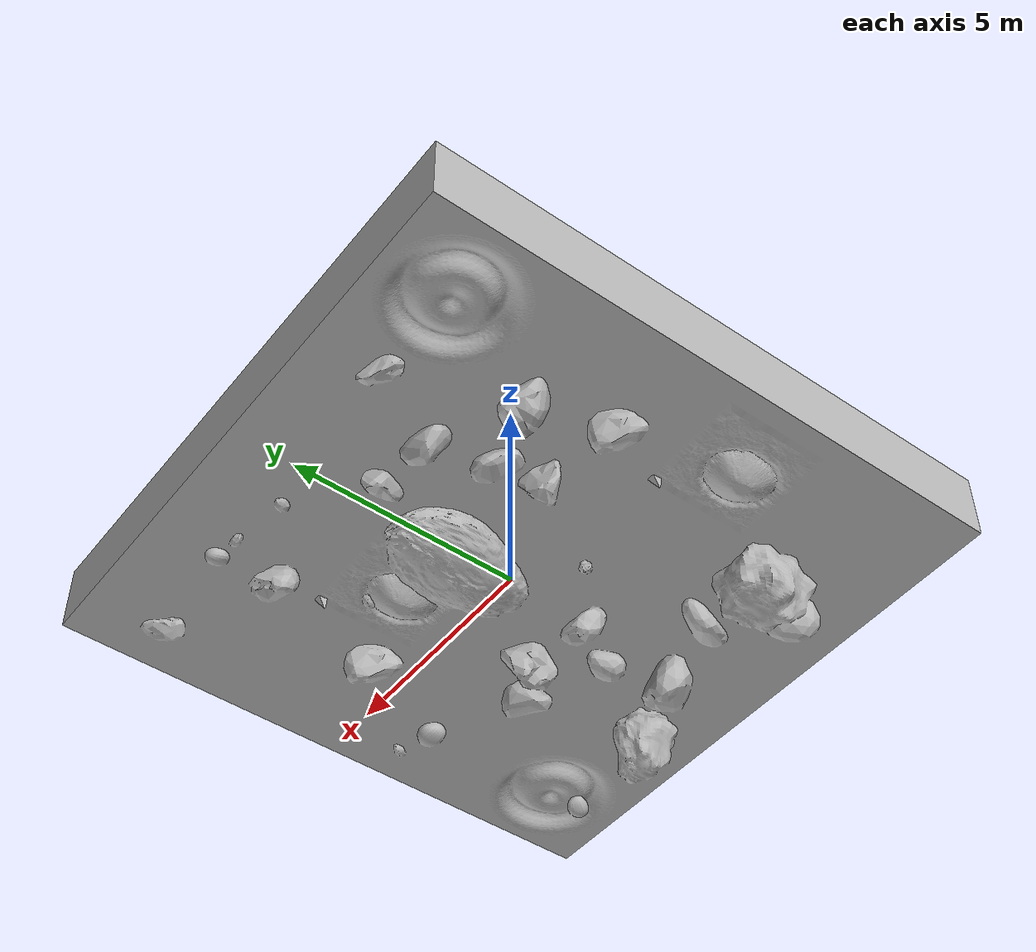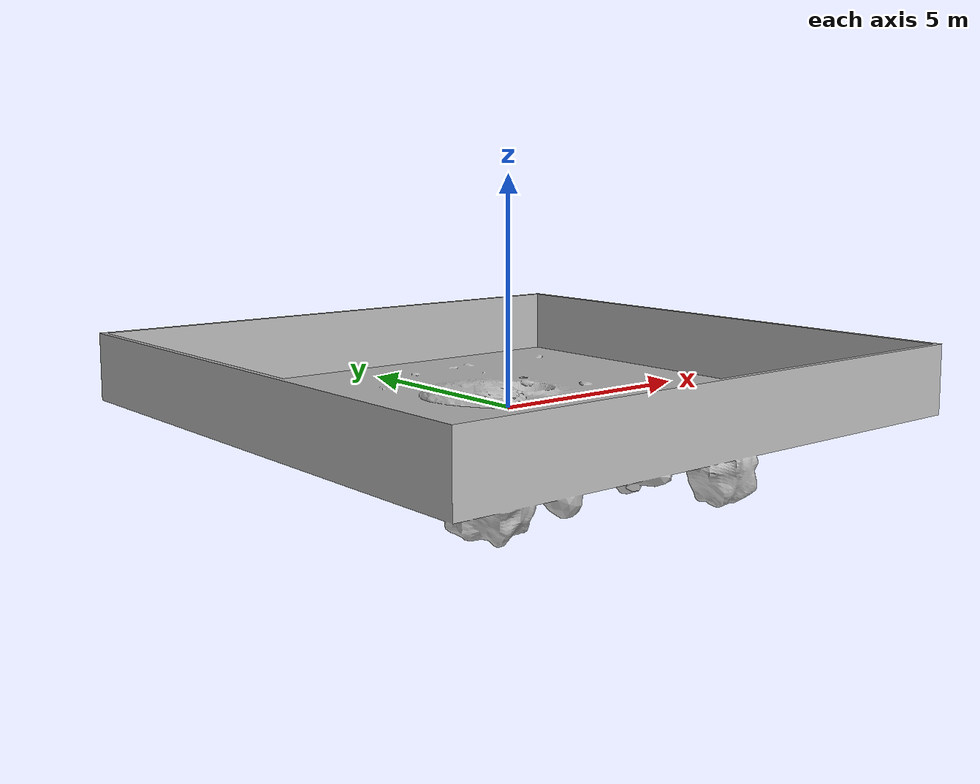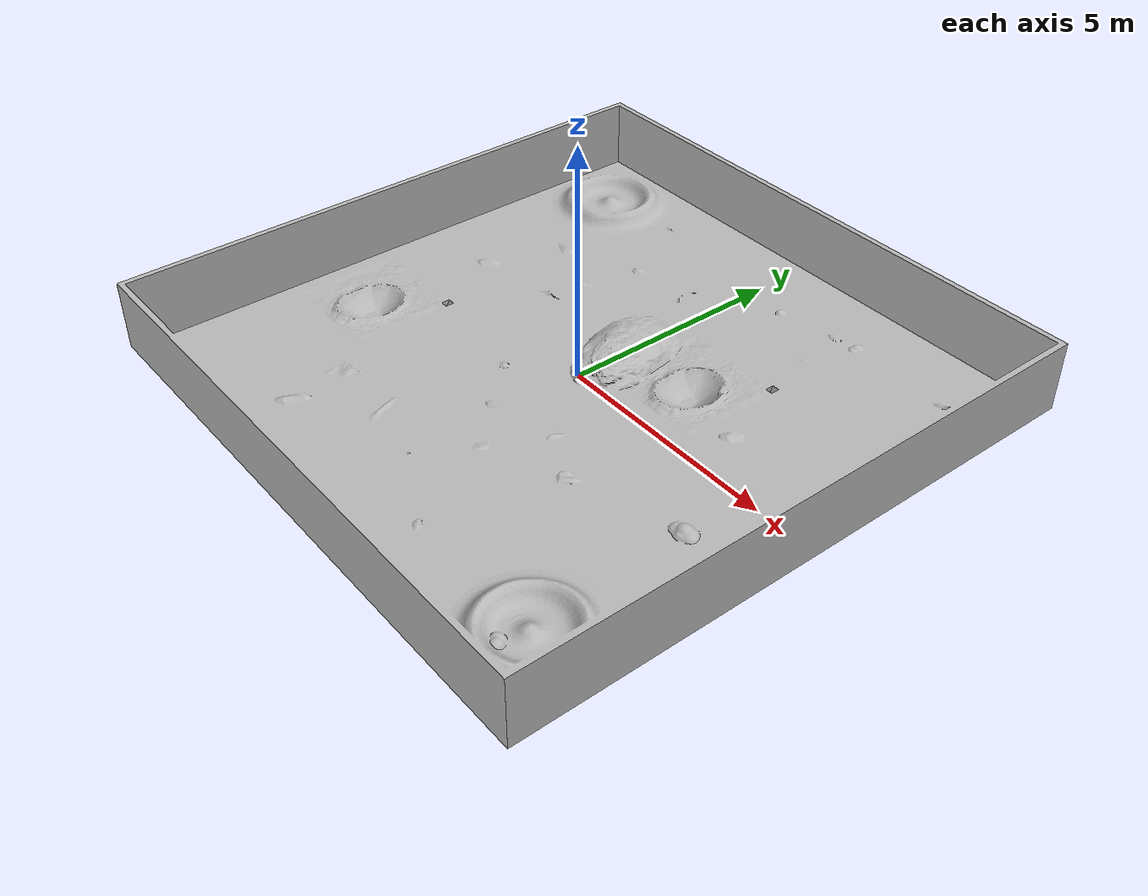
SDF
<?xml version="1.0" ?>
<sdf version="1.7">
  <model name="mars_terrain_2">
    <static>true</static>
    <link name="link">
      <pose>0 0 0 0 0 0</pose>

      <collision name="collision">
        <geometry>
          <mesh>
            <uri>model://mars_terrain_2/meshes/mars_terrain.obj</uri>
          </mesh>
        </geometry>
        <surface>
          <friction>
            <ode>
              <mu>0.9</mu>
              <mu2>0.9</mu2>
            </ode>
          </friction>
        </surface>
      </collision>

      <visual name="visual">
        <geometry>
          <mesh>
            <uri>model://mars_terrain_2/meshes/mars_terrain.obj</uri>
          </mesh>
        </geometry>
      </visual>

    </link>
  </model>
</sdf>
